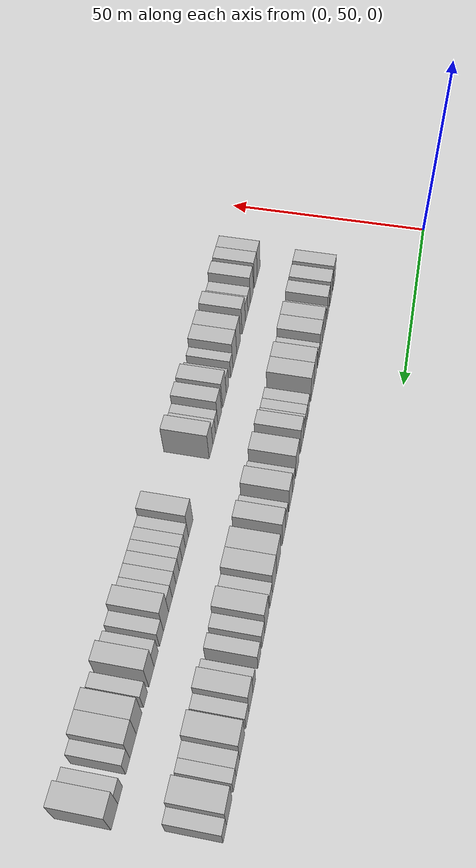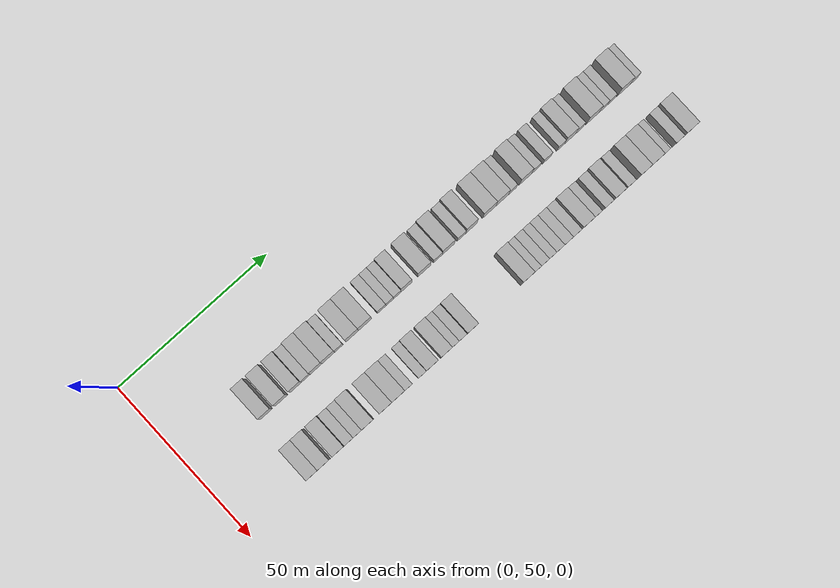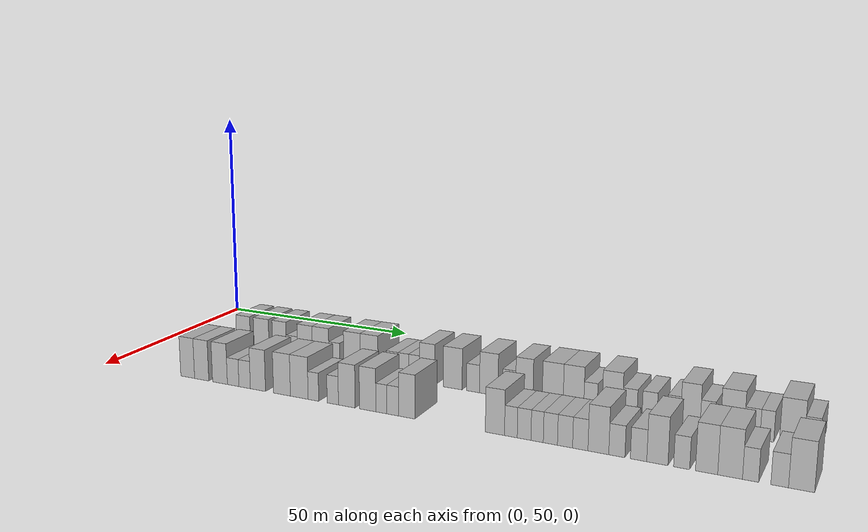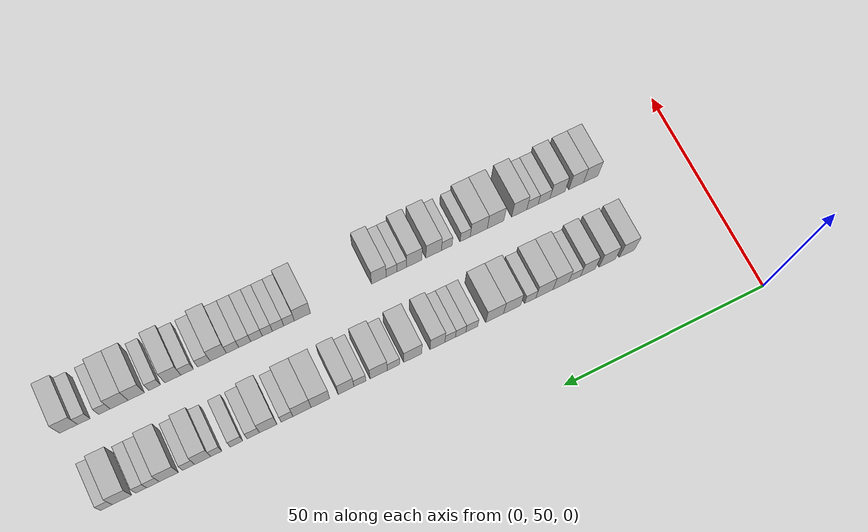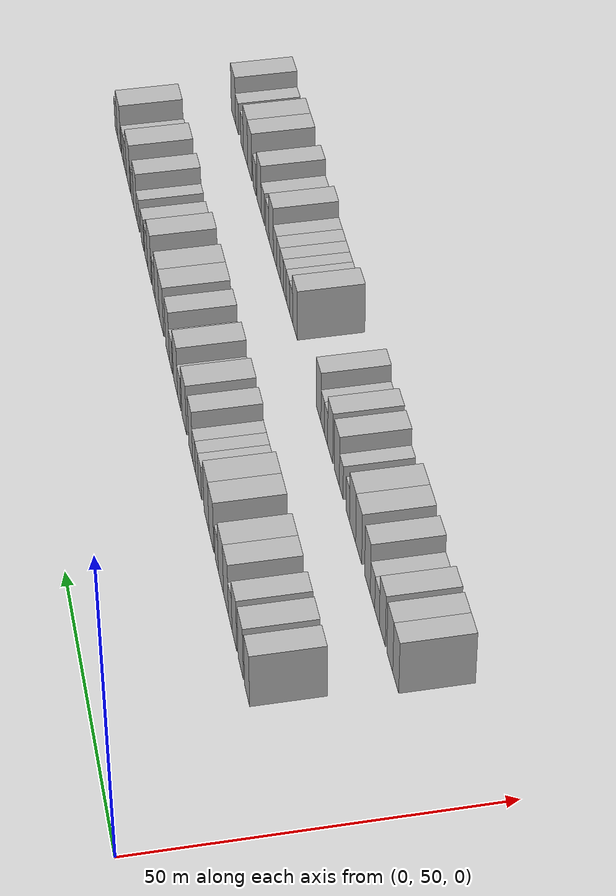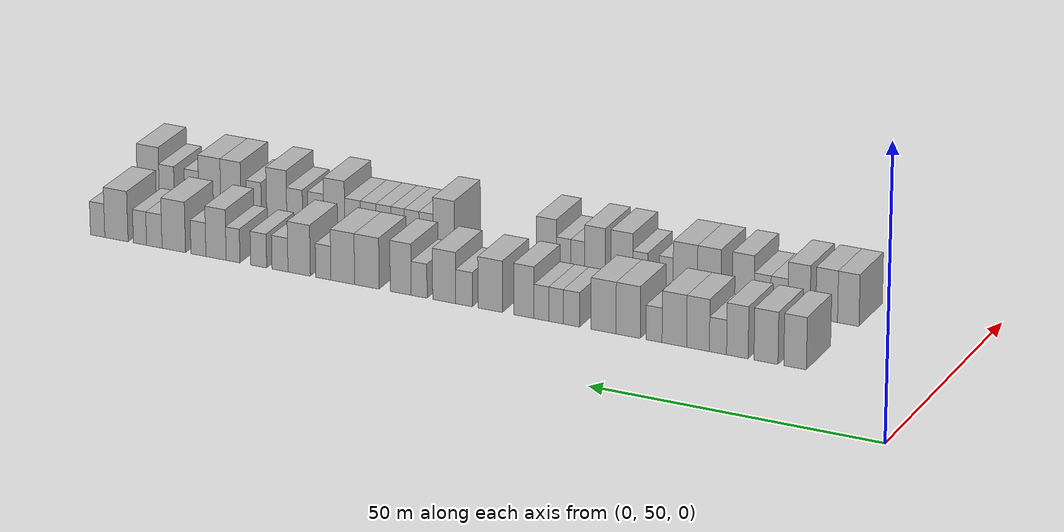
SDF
<sdf version="1.6">
 <world name="default">
  <model name="building_61">
   <static>1</static>
   <pose>25.0000 73.3527 0 0.000000 0.000000 0.000000</pose>
   <link name="link">
    <pose>0 0 4.50 0 0 0</pose>
    <collision name="collision"><geometry><box><size>10.0000 3.8526 9.0000</size></box></geometry></collision>
    <visual name="visual">
     <cast_shadows>0</cast_shadows>
     <geometry><box><size>10.0000 3.8526 9.0000</size></box></geometry>
     <material>
      <script>
       <uri>model://HANNAS_wall/materials/scripts</uri>
       <uri>model://HANNAS_wall/materials/textures</uri>
       <name>vrc/HANNAS_wall</name>
      </script>
     </material>
    </visual>
   </link>
  </model>
  <model name="building_62">
   <static>1</static>
   <pose>25.0000 78.3304 0 0.000000 0.000000 0.000000</pose>
   <link name="link">
    <pose>0 0 4.50 0 0 0</pose>
    <collision name="collision"><geometry><box><size>10.0000 4.1027 9.0000</size></box></geometry></collision>
    <visual name="visual">
     <cast_shadows>0</cast_shadows>
     <geometry><box><size>10.0000 4.1027 9.0000</size></box></geometry>
     <material>
      <script>
       <uri>model://HANNAS_wall/materials/scripts</uri>
       <uri>model://HANNAS_wall/materials/textures</uri>
       <name>vrc/HANNAS_wall</name>
      </script>
     </material>
    </visual>
   </link>
  </model>
  <model name="building_63">
   <static>1</static>
   <pose>25.0000 83.2412 0 0.000000 0.000000 0.000000</pose>
   <link name="link">
    <pose>0 0 4.50 0 0 0</pose>
    <collision name="collision"><geometry><box><size>10.0000 3.7189 9.0000</size></box></geometry></collision>
    <visual name="visual">
     <cast_shadows>0</cast_shadows>
     <geometry><box><size>10.0000 3.7189 9.0000</size></box></geometry>
     <material>
      <script>
       <uri>model://HANNAS_wall/materials/scripts</uri>
       <uri>model://HANNAS_wall/materials/textures</uri>
       <name>vrc/HANNAS_wall</name>
      </script>
     </material>
    </visual>
   </link>
  </model>
  <model name="building_64">
   <static>1</static>
   <pose>25.0000 86.5827 0 0.000000 0.000000 0.000000</pose>
   <link name="link">
    <pose>0 0 3.00 0 0 0</pose>
    <collision name="collision"><geometry><box><size>10.0000 2.9642 6.0000</size></box></geometry></collision>
    <visual name="visual">
     <cast_shadows>0</cast_shadows>
     <geometry><box><size>10.0000 2.9642 6.0000</size></box></geometry>
     <material>
      <script>
       <uri>model://HANNAS_wall/materials/scripts</uri>
       <uri>model://HANNAS_wall/materials/textures</uri>
       <name>vrc/HANNAS_wall</name>
      </script>
     </material>
    </visual>
   </link>
  </model>
  <model name="building_65">
   <static>1</static>
   <pose>25.0000 90.0310 0 0.000000 0.000000 0.000000</pose>
   <link name="link">
    <pose>0 0 4.50 0 0 0</pose>
    <collision name="collision"><geometry><box><size>10.0000 3.9324 9.0000</size></box></geometry></collision>
    <visual name="visual">
     <cast_shadows>0</cast_shadows>
     <geometry><box><size>10.0000 3.9324 9.0000</size></box></geometry>
     <material>
      <script>
       <uri>model://HANNAS_wall/materials/scripts</uri>
       <uri>model://HANNAS_wall/materials/textures</uri>
       <name>vrc/HANNAS_wall</name>
      </script>
     </material>
    </visual>
   </link>
  </model>
  <model name="building_66">
   <static>1</static>
   <pose>25.0000 94.1354 0 0.000000 0.000000 0.000000</pose>
   <link name="link">
    <pose>0 0 4.50 0 0 0</pose>
    <collision name="collision"><geometry><box><size>10.0000 4.2765 9.0000</size></box></geometry></collision>
    <visual name="visual">
     <cast_shadows>0</cast_shadows>
     <geometry><box><size>10.0000 4.2765 9.0000</size></box></geometry>
     <material>
      <script>
       <uri>model://HANNAS_wall/materials/scripts</uri>
       <uri>model://HANNAS_wall/materials/textures</uri>
       <name>vrc/HANNAS_wall</name>
      </script>
     </material>
    </visual>
   </link>
  </model>
  <model name="building_67">
   <static>1</static>
   <pose>25.0000 97.6719 0 0.000000 0.000000 0.000000</pose>
   <link name="link">
    <pose>0 0 3.00 0 0 0</pose>
    <collision name="collision"><geometry><box><size>10.0000 2.7966 6.0000</size></box></geometry></collision>
    <visual name="visual">
     <cast_shadows>0</cast_shadows>
     <geometry><box><size>10.0000 2.7966 6.0000</size></box></geometry>
     <material>
      <script>
       <uri>model://HANNAS_wall/materials/scripts</uri>
       <uri>model://HANNAS_wall/materials/textures</uri>
       <name>vrc/HANNAS_wall</name>
      </script>
     </material>
    </visual>
   </link>
  </model>
  <model name="building_68">
   <static>1</static>
   <pose>25.0000 102.1800 0 0.000000 0.000000 0.000000</pose>
   <link name="link">
    <pose>0 0 4.50 0 0 0</pose>
    <collision name="collision"><geometry><box><size>10.0000 4.2195 9.0000</size></box></geometry></collision>
    <visual name="visual">
     <cast_shadows>0</cast_shadows>
     <geometry><box><size>10.0000 4.2195 9.0000</size></box></geometry>
     <material>
      <script>
       <uri>model://HANNAS_wall/materials/scripts</uri>
       <uri>model://HANNAS_wall/materials/textures</uri>
       <name>vrc/HANNAS_wall</name>
      </script>
     </material>
    </visual>
   </link>
  </model>
  <model name="building_69">
   <static>1</static>
   <pose>25.0000 106.4822 0 0.000000 0.000000 0.000000</pose>
   <link name="link">
    <pose>0 0 4.50 0 0 0</pose>
    <collision name="collision"><geometry><box><size>10.0000 4.3849 9.0000</size></box></geometry></collision>
    <visual name="visual">
     <cast_shadows>0</cast_shadows>
     <geometry><box><size>10.0000 4.3849 9.0000</size></box></geometry>
     <material>
      <script>
       <uri>model://HANNAS_wall/materials/scripts</uri>
       <uri>model://HANNAS_wall/materials/textures</uri>
       <name>vrc/HANNAS_wall</name>
      </script>
     </material>
    </visual>
   </link>
  </model>
  <model name="building_70">
   <static>1</static>
   <pose>25.0000 112.1308 0 0.000000 0.000000 0.000000</pose>
   <link name="link">
    <pose>0 0 3.00 0 0 0</pose>
    <collision name="collision"><geometry><box><size>10.0000 2.9123 6.0000</size></box></geometry></collision>
    <visual name="visual">
     <cast_shadows>0</cast_shadows>
     <geometry><box><size>10.0000 2.9123 6.0000</size></box></geometry>
     <material>
      <script>
       <uri>model://HANNAS_wall/materials/scripts</uri>
       <uri>model://HANNAS_wall/materials/textures</uri>
       <name>vrc/HANNAS_wall</name>
      </script>
     </material>
    </visual>
   </link>
  </model>
  <model name="building_71">
   <static>1</static>
   <pose>25.0000 114.8568 0 0.000000 0.000000 0.000000</pose>
   <link name="link">
    <pose>0 0 3.00 0 0 0</pose>
    <collision name="collision"><geometry><box><size>10.0000 2.5398 6.0000</size></box></geometry></collision>
    <visual name="visual">
     <cast_shadows>0</cast_shadows>
     <geometry><box><size>10.0000 2.5398 6.0000</size></box></geometry>
     <material>
      <script>
       <uri>model://HANNAS_wall/materials/scripts</uri>
       <uri>model://HANNAS_wall/materials/textures</uri>
       <name>vrc/HANNAS_wall</name>
      </script>
     </material>
    </visual>
   </link>
  </model>
  <model name="building_72">
   <static>1</static>
   <pose>25.0000 117.4255 0 0.000000 0.000000 0.000000</pose>
   <link name="link">
    <pose>0 0 3.00 0 0 0</pose>
    <collision name="collision"><geometry><box><size>10.0000 2.5976 6.0000</size></box></geometry></collision>
    <visual name="visual">
     <cast_shadows>0</cast_shadows>
     <geometry><box><size>10.0000 2.5976 6.0000</size></box></geometry>
     <material>
      <script>
       <uri>model://HANNAS_wall/materials/scripts</uri>
       <uri>model://HANNAS_wall/materials/textures</uri>
       <name>vrc/HANNAS_wall</name>
      </script>
     </material>
    </visual>
   </link>
  </model>
  <model name="building_73">
   <static>1</static>
   <pose>25.0000 120.5331 0 0.000000 0.000000 0.000000</pose>
   <link name="link">
    <pose>0 0 4.50 0 0 0</pose>
    <collision name="collision"><geometry><box><size>10.0000 3.6175 9.0000</size></box></geometry></collision>
    <visual name="visual">
     <cast_shadows>0</cast_shadows>
     <geometry><box><size>10.0000 3.6175 9.0000</size></box></geometry>
     <material>
      <script>
       <uri>model://HANNAS_wall/materials/scripts</uri>
       <uri>model://HANNAS_wall/materials/textures</uri>
       <name>vrc/HANNAS_wall</name>
      </script>
     </material>
    </visual>
   </link>
  </model>
  <model name="building_74">
   <static>1</static>
   <pose>25.0000 126.5254 0 0.000000 0.000000 0.000000</pose>
   <link name="link">
    <pose>0 0 4.50 0 0 0</pose>
    <collision name="collision"><geometry><box><size>10.0000 4.3671 9.0000</size></box></geometry></collision>
    <visual name="visual">
     <cast_shadows>0</cast_shadows>
     <geometry><box><size>10.0000 4.3671 9.0000</size></box></geometry>
     <material>
      <script>
       <uri>model://HANNAS_wall/materials/scripts</uri>
       <uri>model://HANNAS_wall/materials/textures</uri>
       <name>vrc/HANNAS_wall</name>
      </script>
     </material>
    </visual>
   </link>
  </model>
  <model name="building_75">
   <static>1</static>
   <pose>25.0000 131.1952 0 0.000000 0.000000 0.000000</pose>
   <link name="link">
    <pose>0 0 3.00 0 0 0</pose>
    <collision name="collision"><geometry><box><size>10.0000 2.9726 6.0000</size></box></geometry></collision>
    <visual name="visual">
     <cast_shadows>0</cast_shadows>
     <geometry><box><size>10.0000 2.9726 6.0000</size></box></geometry>
     <material>
      <script>
       <uri>model://HANNAS_wall/materials/scripts</uri>
       <uri>model://HANNAS_wall/materials/textures</uri>
       <name>vrc/HANNAS_wall</name>
      </script>
     </material>
    </visual>
   </link>
  </model>
  <model name="building_76">
   <static>1</static>
   <pose>25.0000 134.7563 0 0.000000 0.000000 0.000000</pose>
   <link name="link">
    <pose>0 0 4.50 0 0 0</pose>
    <collision name="collision"><geometry><box><size>10.0000 4.1496 9.0000</size></box></geometry></collision>
    <visual name="visual">
     <cast_shadows>0</cast_shadows>
     <geometry><box><size>10.0000 4.1496 9.0000</size></box></geometry>
     <material>
      <script>
       <uri>model://HANNAS_wall/materials/scripts</uri>
       <uri>model://HANNAS_wall/materials/textures</uri>
       <name>vrc/HANNAS_wall</name>
      </script>
     </material>
    </visual>
   </link>
  </model>
  <model name="building_77">
   <static>1</static>
   <pose>25.0000 139.2685 0 0.000000 0.000000 0.000000</pose>
   <link name="link">
    <pose>0 0 3.00 0 0 0</pose>
    <collision name="collision"><geometry><box><size>10.0000 2.8749 6.0000</size></box></geometry></collision>
    <visual name="visual">
     <cast_shadows>0</cast_shadows>
     <geometry><box><size>10.0000 2.8749 6.0000</size></box></geometry>
     <material>
      <script>
       <uri>model://HANNAS_wall/materials/scripts</uri>
       <uri>model://HANNAS_wall/materials/textures</uri>
       <name>vrc/HANNAS_wall</name>
      </script>
     </material>
    </visual>
   </link>
  </model>
  <model name="building_78">
   <static>1</static>
   <pose>25.0000 142.5952 0 0.000000 0.000000 0.000000</pose>
   <link name="link">
    <pose>0 0 4.50 0 0 0</pose>
    <collision name="collision"><geometry><box><size>10.0000 3.7784 9.0000</size></box></geometry></collision>
    <visual name="visual">
     <cast_shadows>0</cast_shadows>
     <geometry><box><size>10.0000 3.7784 9.0000</size></box></geometry>
     <material>
      <script>
       <uri>model://HANNAS_wall/materials/scripts</uri>
       <uri>model://HANNAS_wall/materials/textures</uri>
       <name>vrc/HANNAS_wall</name>
      </script>
     </material>
    </visual>
   </link>
  </model>
  <model name="building_79">
   <static>1</static>
   <pose>25.0000 148.7118 0 0.000000 0.000000 0.000000</pose>
   <link name="link">
    <pose>0 0 4.50 0 0 0</pose>
    <collision name="collision"><geometry><box><size>10.0000 4.4549 9.0000</size></box></geometry></collision>
    <visual name="visual">
     <cast_shadows>0</cast_shadows>
     <geometry><box><size>10.0000 4.4549 9.0000</size></box></geometry>
     <material>
      <script>
       <uri>model://HANNAS_wall/materials/scripts</uri>
       <uri>model://HANNAS_wall/materials/textures</uri>
       <name>vrc/HANNAS_wall</name>
      </script>
     </material>
    </visual>
   </link>
  </model>
  <model name="building_80">
   <static>1</static>
   <pose>25.0000 153.0954 0 0.000000 0.000000 0.000000</pose>
   <link name="link">
    <pose>0 0 4.50 0 0 0</pose>
    <collision name="collision"><geometry><box><size>10.0000 4.3124 9.0000</size></box></geometry></collision>
    <visual name="visual">
     <cast_shadows>0</cast_shadows>
     <geometry><box><size>10.0000 4.3124 9.0000</size></box></geometry>
     <material>
      <script>
       <uri>model://HANNAS_wall/materials/scripts</uri>
       <uri>model://HANNAS_wall/materials/textures</uri>
       <name>vrc/HANNAS_wall</name>
      </script>
     </material>
    </visual>
   </link>
  </model>
  <model name="building_81">
   <static>1</static>
   <pose>25.0000 156.6374 0 0.000000 0.000000 0.000000</pose>
   <link name="link">
    <pose>0 0 3.00 0 0 0</pose>
    <collision name="collision"><geometry><box><size>10.0000 2.7715 6.0000</size></box></geometry></collision>
    <visual name="visual">
     <cast_shadows>0</cast_shadows>
     <geometry><box><size>10.0000 2.7715 6.0000</size></box></geometry>
     <material>
      <script>
       <uri>model://HANNAS_wall/materials/scripts</uri>
       <uri>model://HANNAS_wall/materials/textures</uri>
       <name>vrc/HANNAS_wall</name>
      </script>
     </material>
    </visual>
   </link>
  </model>
  <model name="building_82">
   <static>1</static>
   <pose>25.0000 161.0728 0 0.000000 0.000000 0.000000</pose>
   <link name="link">
    <pose>0 0 4.50 0 0 0</pose>
    <collision name="collision"><geometry><box><size>10.0000 4.0994 9.0000</size></box></geometry></collision>
    <visual name="visual">
     <cast_shadows>0</cast_shadows>
     <geometry><box><size>10.0000 4.0994 9.0000</size></box></geometry>
     <material>
      <script>
       <uri>model://HANNAS_wall/materials/scripts</uri>
       <uri>model://HANNAS_wall/materials/textures</uri>
       <name>vrc/HANNAS_wall</name>
      </script>
     </material>
    </visual>
   </link>
  </model>
  <model name="building_83">
   <static>1</static>
   <pose>25.0000 164.5876 0 0.000000 0.000000 0.000000</pose>
   <link name="link">
    <pose>0 0 3.00 0 0 0</pose>
    <collision name="collision"><geometry><box><size>10.0000 2.9300 6.0000</size></box></geometry></collision>
    <visual name="visual">
     <cast_shadows>0</cast_shadows>
     <geometry><box><size>10.0000 2.9300 6.0000</size></box></geometry>
     <material>
      <script>
       <uri>model://HANNAS_wall/materials/scripts</uri>
       <uri>model://HANNAS_wall/materials/textures</uri>
       <name>vrc/HANNAS_wall</name>
      </script>
     </material>
    </visual>
   </link>
  </model>
  <model name="building_84">
   <static>1</static>
   <pose>25.0000 168.5195 0 0.000000 0.000000 0.000000</pose>
   <link name="link">
    <pose>0 0 3.00 0 0 0</pose>
    <collision name="collision"><geometry><box><size>10.0000 2.9339 6.0000</size></box></geometry></collision>
    <visual name="visual">
     <cast_shadows>0</cast_shadows>
     <geometry><box><size>10.0000 2.9339 6.0000</size></box></geometry>
     <material>
      <script>
       <uri>model://HANNAS_wall/materials/scripts</uri>
       <uri>model://HANNAS_wall/materials/textures</uri>
       <name>vrc/HANNAS_wall</name>
      </script>
     </material>
    </visual>
   </link>
  </model>
  <model name="building_85">
   <static>1</static>
   <pose>25.0000 173.2571 0 0.000000 0.000000 0.000000</pose>
   <link name="link">
    <pose>0 0 3.00 0 0 0</pose>
    <collision name="collision"><geometry><box><size>10.0000 2.5412 6.0000</size></box></geometry></collision>
    <visual name="visual">
     <cast_shadows>0</cast_shadows>
     <geometry><box><size>10.0000 2.5412 6.0000</size></box></geometry>
     <material>
      <script>
       <uri>model://HANNAS_wall/materials/scripts</uri>
       <uri>model://HANNAS_wall/materials/textures</uri>
       <name>vrc/HANNAS_wall</name>
      </script>
     </material>
    </visual>
   </link>
  </model>
  <model name="building_86">
   <static>1</static>
   <pose>25.0000 176.4075 0 0.000000 0.000000 0.000000</pose>
   <link name="link">
    <pose>0 0 4.50 0 0 0</pose>
    <collision name="collision"><geometry><box><size>10.0000 3.7596 9.0000</size></box></geometry></collision>
    <visual name="visual">
     <cast_shadows>0</cast_shadows>
     <geometry><box><size>10.0000 3.7596 9.0000</size></box></geometry>
     <material>
      <script>
       <uri>model://HANNAS_wall/materials/scripts</uri>
       <uri>model://HANNAS_wall/materials/textures</uri>
       <name>vrc/HANNAS_wall</name>
      </script>
     </material>
    </visual>
   </link>
  </model>
  <model name="building_87">
   <static>1</static>
   <pose>25.0000 179.6885 0 0.000000 0.000000 0.000000</pose>
   <link name="link">
    <pose>0 0 3.00 0 0 0</pose>
    <collision name="collision"><geometry><box><size>10.0000 2.8026 6.0000</size></box></geometry></collision>
    <visual name="visual">
     <cast_shadows>0</cast_shadows>
     <geometry><box><size>10.0000 2.8026 6.0000</size></box></geometry>
     <material>
      <script>
       <uri>model://HANNAS_wall/materials/scripts</uri>
       <uri>model://HANNAS_wall/materials/textures</uri>
       <name>vrc/HANNAS_wall</name>
      </script>
     </material>
    </visual>
   </link>
  </model>
  <model name="building_88">
   <static>1</static>
   <pose>25.0000 184.2827 0 0.000000 0.000000 0.000000</pose>
   <link name="link">
    <pose>0 0 4.50 0 0 0</pose>
    <collision name="collision"><geometry><box><size>10.0000 4.3858 9.0000</size></box></geometry></collision>
    <visual name="visual">
     <cast_shadows>0</cast_shadows>
     <geometry><box><size>10.0000 4.3858 9.0000</size></box></geometry>
     <material>
      <script>
       <uri>model://HANNAS_wall/materials/scripts</uri>
       <uri>model://HANNAS_wall/materials/textures</uri>
       <name>vrc/HANNAS_wall</name>
      </script>
     </material>
    </visual>
   </link>
  </model>
  <model name="building_89">
   <static>1</static>
   <pose>25.0000 187.9274 0 0.000000 0.000000 0.000000</pose>
   <link name="link">
    <pose>0 0 3.00 0 0 0</pose>
    <collision name="collision"><geometry><box><size>10.0000 2.9035 6.0000</size></box></geometry></collision>
    <visual name="visual">
     <cast_shadows>0</cast_shadows>
     <geometry><box><size>10.0000 2.9035 6.0000</size></box></geometry>
     <material>
      <script>
       <uri>model://HANNAS_wall/materials/scripts</uri>
       <uri>model://HANNAS_wall/materials/textures</uri>
       <name>vrc/HANNAS_wall</name>
      </script>
     </material>
    </visual>
   </link>
  </model>
  <model name="building_90">
   <static>1</static>
   <pose>25.0000 190.6196 0 0.000000 0.000000 0.000000</pose>
   <link name="link">
    <pose>0 0 3.00 0 0 0</pose>
    <collision name="collision"><geometry><box><size>10.0000 2.4809 6.0000</size></box></geometry></collision>
    <visual name="visual">
     <cast_shadows>0</cast_shadows>
     <geometry><box><size>10.0000 2.4809 6.0000</size></box></geometry>
     <material>
      <script>
       <uri>model://HANNAS_wall/materials/scripts</uri>
       <uri>model://HANNAS_wall/materials/textures</uri>
       <name>vrc/HANNAS_wall</name>
      </script>
     </material>
    </visual>
   </link>
  </model>
  <model name="building_91">
   <static>1</static>
   <pose>25.0000 195.0521 0 0.000000 0.000000 0.000000</pose>
   <link name="link">
    <pose>0 0 4.50 0 0 0</pose>
    <collision name="collision"><geometry><box><size>10.0000 4.3841 9.0000</size></box></geometry></collision>
    <visual name="visual">
     <cast_shadows>0</cast_shadows>
     <geometry><box><size>10.0000 4.3841 9.0000</size></box></geometry>
     <material>
      <script>
       <uri>model://HANNAS_wall/materials/scripts</uri>
       <uri>model://HANNAS_wall/materials/textures</uri>
       <name>vrc/HANNAS_wall</name>
      </script>
     </material>
    </visual>
   </link>
  </model>
  <model name="building_92">
   <static>1</static>
   <pose>25.0000 198.5987 0 0.000000 0.000000 0.000000</pose>
   <link name="link">
    <pose>0 0 3.00 0 0 0</pose>
    <collision name="collision"><geometry><box><size>10.0000 2.7091 6.0000</size></box></geometry></collision>
    <visual name="visual">
     <cast_shadows>0</cast_shadows>
     <geometry><box><size>10.0000 2.7091 6.0000</size></box></geometry>
     <material>
      <script>
       <uri>model://HANNAS_wall/materials/scripts</uri>
       <uri>model://HANNAS_wall/materials/textures</uri>
       <name>vrc/HANNAS_wall</name>
      </script>
     </material>
    </visual>
   </link>
  </model>
  <model name="building_160">
   <static>1</static>
   <pose>44.0000 72.0809 0 0.000000 0.000000 0.000000</pose>
   <link name="link">
    <pose>0 0 4.50 0 0 0</pose>
    <collision name="collision"><geometry><box><size>10.0000 3.7139 9.0000</size></box></geometry></collision>
    <visual name="visual">
     <cast_shadows>0</cast_shadows>
     <geometry><box><size>10.0000 3.7139 9.0000</size></box></geometry>
     <material>
      <script>
       <uri>model://HANNAS_wall/materials/scripts</uri>
       <uri>model://HANNAS_wall/materials/textures</uri>
       <name>vrc/HANNAS_wall</name>
      </script>
     </material>
    </visual>
   </link>
  </model>
  <model name="building_161">
   <static>1</static>
   <pose>44.0000 75.8234 0 0.000000 0.000000 0.000000</pose>
   <link name="link">
    <pose>0 0 4.50 0 0 0</pose>
    <collision name="collision"><geometry><box><size>10.0000 3.7712 9.0000</size></box></geometry></collision>
    <visual name="visual">
     <cast_shadows>0</cast_shadows>
     <geometry><box><size>10.0000 3.7712 9.0000</size></box></geometry>
     <material>
      <script>
       <uri>model://HANNAS_wall/materials/scripts</uri>
       <uri>model://HANNAS_wall/materials/textures</uri>
       <name>vrc/HANNAS_wall</name>
      </script>
     </material>
    </visual>
   </link>
  </model>
  <model name="building_162">
   <static>1</static>
   <pose>44.0000 80.6430 0 0.000000 0.000000 0.000000</pose>
   <link name="link">
    <pose>0 0 4.50 0 0 0</pose>
    <collision name="collision"><geometry><box><size>10.0000 3.8681 9.0000</size></box></geometry></collision>
    <visual name="visual">
     <cast_shadows>0</cast_shadows>
     <geometry><box><size>10.0000 3.8681 9.0000</size></box></geometry>
     <material>
      <script>
       <uri>model://HANNAS_wall/materials/scripts</uri>
       <uri>model://HANNAS_wall/materials/textures</uri>
       <name>vrc/HANNAS_wall</name>
      </script>
     </material>
    </visual>
   </link>
  </model>
  <model name="building_163">
   <static>1</static>
   <pose>44.0000 84.0648 0 0.000000 0.000000 0.000000</pose>
   <link name="link">
    <pose>0 0 3.00 0 0 0</pose>
    <collision name="collision"><geometry><box><size>10.0000 2.9755 6.0000</size></box></geometry></collision>
    <visual name="visual">
     <cast_shadows>0</cast_shadows>
     <geometry><box><size>10.0000 2.9755 6.0000</size></box></geometry>
     <material>
      <script>
       <uri>model://HANNAS_wall/materials/scripts</uri>
       <uri>model://HANNAS_wall/materials/textures</uri>
       <name>vrc/HANNAS_wall</name>
      </script>
     </material>
    </visual>
   </link>
  </model>
  <model name="building_164">
   <static>1</static>
   <pose>44.0000 87.0122 0 0.000000 0.000000 0.000000</pose>
   <link name="link">
    <pose>0 0 3.00 0 0 0</pose>
    <collision name="collision"><geometry><box><size>10.0000 2.9193 6.0000</size></box></geometry></collision>
    <visual name="visual">
     <cast_shadows>0</cast_shadows>
     <geometry><box><size>10.0000 2.9193 6.0000</size></box></geometry>
     <material>
      <script>
       <uri>model://HANNAS_wall/materials/scripts</uri>
       <uri>model://HANNAS_wall/materials/textures</uri>
       <name>vrc/HANNAS_wall</name>
      </script>
     </material>
    </visual>
   </link>
  </model>
  <model name="building_165">
   <static>1</static>
   <pose>44.0000 90.3778 0 0.000000 0.000000 0.000000</pose>
   <link name="link">
    <pose>0 0 4.50 0 0 0</pose>
    <collision name="collision"><geometry><box><size>10.0000 3.8120 9.0000</size></box></geometry></collision>
    <visual name="visual">
     <cast_shadows>0</cast_shadows>
     <geometry><box><size>10.0000 3.8120 9.0000</size></box></geometry>
     <material>
      <script>
       <uri>model://HANNAS_wall/materials/scripts</uri>
       <uri>model://HANNAS_wall/materials/textures</uri>
       <name>vrc/HANNAS_wall</name>
      </script>
     </material>
    </visual>
   </link>
  </model>
  <model name="building_166">
   <static>1</static>
   <pose>44.0000 96.3622 0 0.000000 0.000000 0.000000</pose>
   <link name="link">
    <pose>0 0 4.50 0 0 0</pose>
    <collision name="collision"><geometry><box><size>10.0000 4.1570 9.0000</size></box></geometry></collision>
    <visual name="visual">
     <cast_shadows>0</cast_shadows>
     <geometry><box><size>10.0000 4.1570 9.0000</size></box></geometry>
     <material>
      <script>
       <uri>model://HANNAS_wall/materials/scripts</uri>
       <uri>model://HANNAS_wall/materials/textures</uri>
       <name>vrc/HANNAS_wall</name>
      </script>
     </material>
    </visual>
   </link>
  </model>
  <model name="building_167">
   <static>1</static>
   <pose>44.0000 100.5893 0 0.000000 0.000000 0.000000</pose>
   <link name="link">
    <pose>0 0 4.50 0 0 0</pose>
    <collision name="collision"><geometry><box><size>10.0000 4.2971 9.0000</size></box></geometry></collision>
    <visual name="visual">
     <cast_shadows>0</cast_shadows>
     <geometry><box><size>10.0000 4.2971 9.0000</size></box></geometry>
     <material>
      <script>
       <uri>model://HANNAS_wall/materials/scripts</uri>
       <uri>model://HANNAS_wall/materials/textures</uri>
       <name>vrc/HANNAS_wall</name>
      </script>
     </material>
    </visual>
   </link>
  </model>
  <model name="building_168">
   <static>1</static>
   <pose>44.0000 104.0029 0 0.000000 0.000000 0.000000</pose>
   <link name="link">
    <pose>0 0 3.00 0 0 0</pose>
    <collision name="collision"><geometry><box><size>10.0000 2.5301 6.0000</size></box></geometry></collision>
    <visual name="visual">
     <cast_shadows>0</cast_shadows>
     <geometry><box><size>10.0000 2.5301 6.0000</size></box></geometry>
     <material>
      <script>
       <uri>model://HANNAS_wall/materials/scripts</uri>
       <uri>model://HANNAS_wall/materials/textures</uri>
       <name>vrc/HANNAS_wall</name>
      </script>
     </material>
    </visual>
   </link>
  </model>
  <model name="building_169">
   <static>1</static>
   <pose>44.0000 108.5931 0 0.000000 0.000000 0.000000</pose>
   <link name="link">
    <pose>0 0 3.00 0 0 0</pose>
    <collision name="collision"><geometry><box><size>10.0000 2.6503 6.0000</size></box></geometry></collision>
    <visual name="visual">
     <cast_shadows>0</cast_shadows>
     <geometry><box><size>10.0000 2.6503 6.0000</size></box></geometry>
     <material>
      <script>
       <uri>model://HANNAS_wall/materials/scripts</uri>
       <uri>model://HANNAS_wall/materials/textures</uri>
       <name>vrc/HANNAS_wall</name>
      </script>
     </material>
    </visual>
   </link>
  </model>
  <model name="building_170">
   <static>1</static>
   <pose>44.0000 111.8605 0 0.000000 0.000000 0.000000</pose>
   <link name="link">
    <pose>0 0 4.50 0 0 0</pose>
    <collision name="collision"><geometry><box><size>10.0000 3.8846 9.0000</size></box></geometry></collision>
    <visual name="visual">
     <cast_shadows>0</cast_shadows>
     <geometry><box><size>10.0000 3.8846 9.0000</size></box></geometry>
     <material>
      <script>
       <uri>model://HANNAS_wall/materials/scripts</uri>
       <uri>model://HANNAS_wall/materials/textures</uri>
       <name>vrc/HANNAS_wall</name>
      </script>
     </material>
    </visual>
   </link>
  </model>
  <model name="building_171">
   <static>1</static>
   <pose>44.0000 116.6657 0 0.000000 0.000000 0.000000</pose>
   <link name="link">
    <pose>0 0 4.50 0 0 0</pose>
    <collision name="collision"><geometry><box><size>10.0000 3.7256 9.0000</size></box></geometry></collision>
    <visual name="visual">
     <cast_shadows>0</cast_shadows>
     <geometry><box><size>10.0000 3.7256 9.0000</size></box></geometry>
     <material>
      <script>
       <uri>model://HANNAS_wall/materials/scripts</uri>
       <uri>model://HANNAS_wall/materials/textures</uri>
       <name>vrc/HANNAS_wall</name>
      </script>
     </material>
    </visual>
   </link>
  </model>
  <model name="building_172">
   <static>1</static>
   <pose>44.0000 119.7372 0 0.000000 0.000000 0.000000</pose>
   <link name="link">
    <pose>0 0 3.00 0 0 0</pose>
    <collision name="collision"><geometry><box><size>10.0000 2.4175 6.0000</size></box></geometry></collision>
    <visual name="visual">
     <cast_shadows>0</cast_shadows>
     <geometry><box><size>10.0000 2.4175 6.0000</size></box></geometry>
     <material>
      <script>
       <uri>model://HANNAS_wall/materials/scripts</uri>
       <uri>model://HANNAS_wall/materials/textures</uri>
       <name>vrc/HANNAS_wall</name>
      </script>
     </material>
    </visual>
   </link>
  </model>
  <model name="building_173">
   <static>1</static>
   <pose>44.0000 122.2751 0 0.000000 0.000000 0.000000</pose>
   <link name="link">
    <pose>0 0 3.00 0 0 0</pose>
    <collision name="collision"><geometry><box><size>10.0000 2.6584 6.0000</size></box></geometry></collision>
    <visual name="visual">
     <cast_shadows>0</cast_shadows>
     <geometry><box><size>10.0000 2.6584 6.0000</size></box></geometry>
     <material>
      <script>
       <uri>model://HANNAS_wall/materials/scripts</uri>
       <uri>model://HANNAS_wall/materials/textures</uri>
       <name>vrc/HANNAS_wall</name>
      </script>
     </material>
    </visual>
   </link>
  </model>
  <model name="building_174">
   <static>1</static>
   <pose>44.0000 125.4052 0 0.000000 0.000000 0.000000</pose>
   <link name="link">
    <pose>0 0 4.50 0 0 0</pose>
    <collision name="collision"><geometry><box><size>10.0000 3.6018 9.0000</size></box></geometry></collision>
    <visual name="visual">
     <cast_shadows>0</cast_shadows>
     <geometry><box><size>10.0000 3.6018 9.0000</size></box></geometry>
     <material>
      <script>
       <uri>model://HANNAS_wall/materials/scripts</uri>
       <uri>model://HANNAS_wall/materials/textures</uri>
       <name>vrc/HANNAS_wall</name>
      </script>
     </material>
    </visual>
   </link>
  </model>
  <model name="building_175">
   <static>1</static>
   <pose>44.0000 144.0636 0 0.000000 0.000000 0.000000</pose>
   <link name="link">
    <pose>0 0 4.50 0 0 0</pose>
    <collision name="collision"><geometry><box><size>10.0000 3.9050 9.0000</size></box></geometry></collision>
    <visual name="visual">
     <cast_shadows>0</cast_shadows>
     <geometry><box><size>10.0000 3.9050 9.0000</size></box></geometry>
     <material>
      <script>
       <uri>model://HANNAS_wall/materials/scripts</uri>
       <uri>model://HANNAS_wall/materials/textures</uri>
       <name>vrc/HANNAS_wall</name>
      </script>
     </material>
    </visual>
   </link>
  </model>
  <model name="building_176">
   <static>1</static>
   <pose>44.0000 147.2941 0 0.000000 0.000000 0.000000</pose>
   <link name="link">
    <pose>0 0 3.00 0 0 0</pose>
    <collision name="collision"><geometry><box><size>10.0000 2.5559 6.0000</size></box></geometry></collision>
    <visual name="visual">
     <cast_shadows>0</cast_shadows>
     <geometry><box><size>10.0000 2.5559 6.0000</size></box></geometry>
     <material>
      <script>
       <uri>model://HANNAS_wall/materials/scripts</uri>
       <uri>model://HANNAS_wall/materials/textures</uri>
       <name>vrc/HANNAS_wall</name>
      </script>
     </material>
    </visual>
   </link>
  </model>
  <model name="building_177">
   <static>1</static>
   <pose>44.0000 149.9361 0 0.000000 0.000000 0.000000</pose>
   <link name="link">
    <pose>0 0 3.00 0 0 0</pose>
    <collision name="collision"><geometry><box><size>10.0000 2.7281 6.0000</size></box></geometry></collision>
    <visual name="visual">
     <cast_shadows>0</cast_shadows>
     <geometry><box><size>10.0000 2.7281 6.0000</size></box></geometry>
     <material>
      <script>
       <uri>model://HANNAS_wall/materials/scripts</uri>
       <uri>model://HANNAS_wall/materials/textures</uri>
       <name>vrc/HANNAS_wall</name>
      </script>
     </material>
    </visual>
   </link>
  </model>
  <model name="building_178">
   <static>1</static>
   <pose>44.0000 152.5133 0 0.000000 0.000000 0.000000</pose>
   <link name="link">
    <pose>0 0 3.00 0 0 0</pose>
    <collision name="collision"><geometry><box><size>10.0000 2.4263 6.0000</size></box></geometry></collision>
    <visual name="visual">
     <cast_shadows>0</cast_shadows>
     <geometry><box><size>10.0000 2.4263 6.0000</size></box></geometry>
     <material>
      <script>
       <uri>model://HANNAS_wall/materials/scripts</uri>
       <uri>model://HANNAS_wall/materials/textures</uri>
       <name>vrc/HANNAS_wall</name>
      </script>
     </material>
    </visual>
   </link>
  </model>
  <model name="building_179">
   <static>1</static>
   <pose>44.0000 155.1018 0 0.000000 0.000000 0.000000</pose>
   <link name="link">
    <pose>0 0 3.00 0 0 0</pose>
    <collision name="collision"><geometry><box><size>10.0000 2.7506 6.0000</size></box></geometry></collision>
    <visual name="visual">
     <cast_shadows>0</cast_shadows>
     <geometry><box><size>10.0000 2.7506 6.0000</size></box></geometry>
     <material>
      <script>
       <uri>model://HANNAS_wall/materials/scripts</uri>
       <uri>model://HANNAS_wall/materials/textures</uri>
       <name>vrc/HANNAS_wall</name>
      </script>
     </material>
    </visual>
   </link>
  </model>
  <model name="building_180">
   <static>1</static>
   <pose>44.0000 157.9313 0 0.000000 0.000000 0.000000</pose>
   <link name="link">
    <pose>0 0 3.00 0 0 0</pose>
    <collision name="collision"><geometry><box><size>10.0000 2.9085 6.0000</size></box></geometry></collision>
    <visual name="visual">
     <cast_shadows>0</cast_shadows>
     <geometry><box><size>10.0000 2.9085 6.0000</size></box></geometry>
     <material>
      <script>
       <uri>model://HANNAS_wall/materials/scripts</uri>
       <uri>model://HANNAS_wall/materials/textures</uri>
       <name>vrc/HANNAS_wall</name>
      </script>
     </material>
    </visual>
   </link>
  </model>
  <model name="building_181">
   <static>1</static>
   <pose>44.0000 160.8441 0 0.000000 0.000000 0.000000</pose>
   <link name="link">
    <pose>0 0 3.00 0 0 0</pose>
    <collision name="collision"><geometry><box><size>10.0000 2.9170 6.0000</size></box></geometry></collision>
    <visual name="visual">
     <cast_shadows>0</cast_shadows>
     <geometry><box><size>10.0000 2.9170 6.0000</size></box></geometry>
     <material>
      <script>
       <uri>model://HANNAS_wall/materials/scripts</uri>
       <uri>model://HANNAS_wall/materials/textures</uri>
       <name>vrc/HANNAS_wall</name>
      </script>
     </material>
    </visual>
   </link>
  </model>
  <model name="building_182">
   <static>1</static>
   <pose>44.0000 164.2485 0 0.000000 0.000000 0.000000</pose>
   <link name="link">
    <pose>0 0 4.50 0 0 0</pose>
    <collision name="collision"><geometry><box><size>10.0000 3.8918 9.0000</size></box></geometry></collision>
    <visual name="visual">
     <cast_shadows>0</cast_shadows>
     <geometry><box><size>10.0000 3.8918 9.0000</size></box></geometry>
     <material>
      <script>
       <uri>model://HANNAS_wall/materials/scripts</uri>
       <uri>model://HANNAS_wall/materials/textures</uri>
       <name>vrc/HANNAS_wall</name>
      </script>
     </material>
    </visual>
   </link>
  </model>
  <model name="building_183">
   <static>1</static>
   <pose>44.0000 167.6797 0 0.000000 0.000000 0.000000</pose>
   <link name="link">
    <pose>0 0 3.00 0 0 0</pose>
    <collision name="collision"><geometry><box><size>10.0000 2.9707 6.0000</size></box></geometry></collision>
    <visual name="visual">
     <cast_shadows>0</cast_shadows>
     <geometry><box><size>10.0000 2.9707 6.0000</size></box></geometry>
     <material>
      <script>
       <uri>model://HANNAS_wall/materials/scripts</uri>
       <uri>model://HANNAS_wall/materials/textures</uri>
       <name>vrc/HANNAS_wall</name>
      </script>
     </material>
    </visual>
   </link>
  </model>
  <model name="building_184">
   <static>1</static>
   <pose>44.0000 171.6484 0 0.000000 0.000000 0.000000</pose>
   <link name="link">
    <pose>0 0 3.00 0 0 0</pose>
    <collision name="collision"><geometry><box><size>10.0000 2.9666 6.0000</size></box></geometry></collision>
    <visual name="visual">
     <cast_shadows>0</cast_shadows>
     <geometry><box><size>10.0000 2.9666 6.0000</size></box></geometry>
     <material>
      <script>
       <uri>model://HANNAS_wall/materials/scripts</uri>
       <uri>model://HANNAS_wall/materials/textures</uri>
       <name>vrc/HANNAS_wall</name>
      </script>
     </material>
    </visual>
   </link>
  </model>
  <model name="building_185">
   <static>1</static>
   <pose>44.0000 175.0209 0 0.000000 0.000000 0.000000</pose>
   <link name="link">
    <pose>0 0 4.50 0 0 0</pose>
    <collision name="collision"><geometry><box><size>10.0000 3.7785 9.0000</size></box></geometry></collision>
    <visual name="visual">
     <cast_shadows>0</cast_shadows>
     <geometry><box><size>10.0000 3.7785 9.0000</size></box></geometry>
     <material>
      <script>
       <uri>model://HANNAS_wall/materials/scripts</uri>
       <uri>model://HANNAS_wall/materials/textures</uri>
       <name>vrc/HANNAS_wall</name>
      </script>
     </material>
    </visual>
   </link>
  </model>
  <model name="building_186">
   <static>1</static>
   <pose>44.0000 179.3156 0 0.000000 0.000000 0.000000</pose>
   <link name="link">
    <pose>0 0 3.00 0 0 0</pose>
    <collision name="collision"><geometry><box><size>10.0000 2.8108 6.0000</size></box></geometry></collision>
    <visual name="visual">
     <cast_shadows>0</cast_shadows>
     <geometry><box><size>10.0000 2.8108 6.0000</size></box></geometry>
     <material>
      <script>
       <uri>model://HANNAS_wall/materials/scripts</uri>
       <uri>model://HANNAS_wall/materials/textures</uri>
       <name>vrc/HANNAS_wall</name>
      </script>
     </material>
    </visual>
   </link>
  </model>
  <model name="building_187">
   <static>1</static>
   <pose>44.0000 183.6311 0 0.000000 0.000000 0.000000</pose>
   <link name="link">
    <pose>0 0 4.50 0 0 0</pose>
    <collision name="collision"><geometry><box><size>10.0000 3.8202 9.0000</size></box></geometry></collision>
    <visual name="visual">
     <cast_shadows>0</cast_shadows>
     <geometry><box><size>10.0000 3.8202 9.0000</size></box></geometry>
     <material>
      <script>
       <uri>model://HANNAS_wall/materials/scripts</uri>
       <uri>model://HANNAS_wall/materials/textures</uri>
       <name>vrc/HANNAS_wall</name>
      </script>
     </material>
    </visual>
   </link>
  </model>
  <model name="building_188">
   <static>1</static>
   <pose>44.0000 187.6285 0 0.000000 0.000000 0.000000</pose>
   <link name="link">
    <pose>0 0 4.50 0 0 0</pose>
    <collision name="collision"><geometry><box><size>10.0000 4.1746 9.0000</size></box></geometry></collision>
    <visual name="visual">
     <cast_shadows>0</cast_shadows>
     <geometry><box><size>10.0000 4.1746 9.0000</size></box></geometry>
     <material>
      <script>
       <uri>model://HANNAS_wall/materials/scripts</uri>
       <uri>model://HANNAS_wall/materials/textures</uri>
       <name>vrc/HANNAS_wall</name>
      </script>
     </material>
    </visual>
   </link>
  </model>
  <model name="building_189">
   <static>1</static>
   <pose>44.0000 191.0555 0 0.000000 0.000000 0.000000</pose>
   <link name="link">
    <pose>0 0 3.00 0 0 0</pose>
    <collision name="collision"><geometry><box><size>10.0000 2.6794 6.0000</size></box></geometry></collision>
    <visual name="visual">
     <cast_shadows>0</cast_shadows>
     <geometry><box><size>10.0000 2.6794 6.0000</size></box></geometry>
     <material>
      <script>
       <uri>model://HANNAS_wall/materials/scripts</uri>
       <uri>model://HANNAS_wall/materials/textures</uri>
       <name>vrc/HANNAS_wall</name>
      </script>
     </material>
    </visual>
   </link>
  </model>
  <model name="building_190">
   <static>1</static>
   <pose>44.0000 195.8289 0 0.000000 0.000000 0.000000</pose>
   <link name="link">
    <pose>0 0 3.00 0 0 0</pose>
    <collision name="collision"><geometry><box><size>10.0000 2.8675 6.0000</size></box></geometry></collision>
    <visual name="visual">
     <cast_shadows>0</cast_shadows>
     <geometry><box><size>10.0000 2.8675 6.0000</size></box></geometry>
     <material>
      <script>
       <uri>model://HANNAS_wall/materials/scripts</uri>
       <uri>model://HANNAS_wall/materials/textures</uri>
       <name>vrc/HANNAS_wall</name>
      </script>
     </material>
    </visual>
   </link>
  </model>
  <model name="building_191">
   <static>1</static>
   <pose>44.0000 199.3507 0 0.000000 0.000000 0.000000</pose>
   <link name="link">
    <pose>0 0 4.50 0 0 0</pose>
    <collision name="collision"><geometry><box><size>10.0000 4.1759 9.0000</size></box></geometry></collision>
    <visual name="visual">
     <cast_shadows>0</cast_shadows>
     <geometry><box><size>10.0000 4.1759 9.0000</size></box></geometry>
     <material>
      <script>
       <uri>model://HANNAS_wall/materials/scripts</uri>
       <uri>model://HANNAS_wall/materials/textures</uri>
       <name>vrc/HANNAS_wall</name>
      </script>
     </material>
    </visual>
   </link>
  </model>
 </world>
</sdf>
